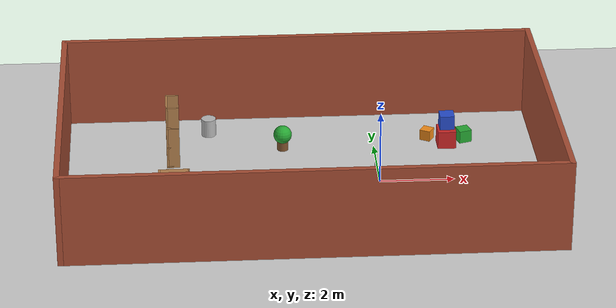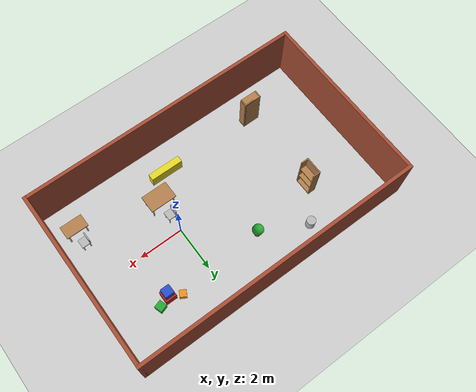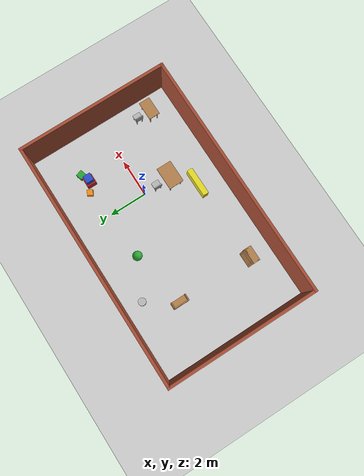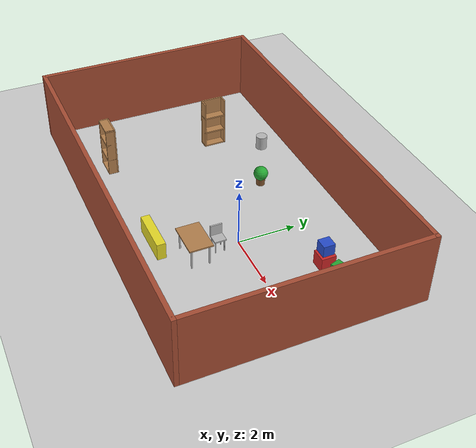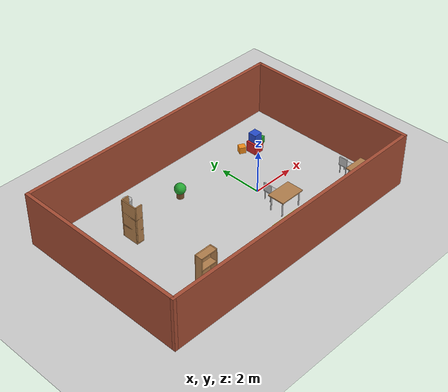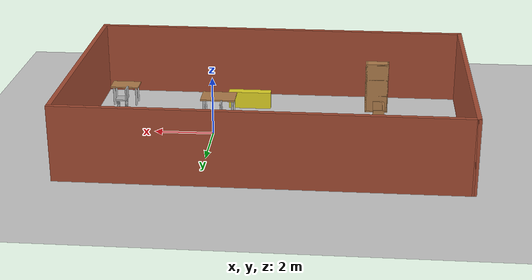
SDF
<?xml version='1.0'?>
<sdf version='1.7'>
  <world name='boxhouse_builtin'>
    <light name='sun' type='directional'>
      <cast_shadows>1</cast_shadows>
      <pose>0 0 10 0 -0 0</pose>
      <diffuse>0.8 0.8 0.8 1</diffuse>
      <specular>0.2 0.2 0.2 1</specular>
      <attenuation><range>1000</range><constant>0.9</constant><linear>0.01</linear><quadratic>0.001</quadratic></attenuation>
      <direction>-0.5 0.1 -0.9</direction>
    </light>

    <model name='ground_plane'>
      <static>1</static>
      <link name='link'>
        <collision name='collision'>
          <geometry><plane><normal>0 0 1</normal><size>100 100</size></plane></geometry>
          <surface><contact><collide_bitmask>65535</collide_bitmask><ode/></contact><friction><ode><mu>100</mu><mu2>50</mu2></ode></friction></surface>
          <max_contacts>10</max_contacts>
        </collision>
        <visual name='visual'>
          <cast_shadows>0</cast_shadows>
          <geometry><plane><normal>0 0 1</normal><size>100 100</size></plane></geometry>
          <material><script><uri>file://media/materials/scripts/gazebo.material</uri><name>Gazebo/Grey</name></script></material>
        </visual>
        <self_collide>0</self_collide>
      </link>
    </model>

    <!-- Room walls (13m x 8m) -->
    <model name='room_walls'>
      <pose>-1.97643 0.059964 0 0 -0 0</pose>
      <static>1</static>
      <link name='wall_front'>
        <collision name='collision'><geometry><box><size>13 0.15 2.5</size></box></geometry><pose>0 0 1.25 0 -0 0</pose></collision>
        <visual name='visual'>
          <pose>0 0 1.25 0 -0 0</pose>
          <geometry><box><size>13 0.15 2.5</size></box></geometry>
          <material><script><uri>file://media/materials/scripts/gazebo.material</uri><name>Gazebo/Bricks</name></script><ambient>0.6 0.55 0.5 1</ambient></material>
        </visual>
        <pose>0 3.925 0 0 -0 0</pose>
      </link>
      <link name='wall_right'>
        <collision name='collision'><geometry><box><size>8 0.15 2.5</size></box></geometry><pose>0 0 1.25 0 -0 0</pose></collision>
        <visual name='visual'>
          <pose>0 0 1.25 0 -0 0</pose>
          <geometry><box><size>8 0.15 2.5</size></box></geometry>
          <material><script><uri>file://media/materials/scripts/gazebo.material</uri><name>Gazebo/Bricks</name></script><ambient>0.6 0.55 0.5 1</ambient></material>
        </visual>
        <pose>6.425 0 0 0 -0 -1.5708</pose>
      </link>
      <link name='wall_back'>
        <collision name='collision'><geometry><box><size>13 0.15 2.5</size></box></geometry><pose>0 0 1.25 0 -0 0</pose></collision>
        <visual name='visual'>
          <pose>0 0 1.25 0 -0 0</pose>
          <geometry><box><size>13 0.15 2.5</size></box></geometry>
          <material><script><uri>file://media/materials/scripts/gazebo.material</uri><name>Gazebo/Bricks</name></script><ambient>0.6 0.55 0.5 1</ambient></material>
        </visual>
        <pose>0 -3.925 0 0 -0 3.14159</pose>
      </link>
      <link name='wall_left'>
        <collision name='collision'><geometry><box><size>8 0.15 2.5</size></box></geometry><pose>0 0 1.25 0 -0 0</pose></collision>
        <visual name='visual'>
          <pose>0 0 1.25 0 -0 0</pose>
          <geometry><box><size>8 0.15 2.5</size></box></geometry>
          <material><script><uri>file://media/materials/scripts/gazebo.material</uri><name>Gazebo/Bricks</name></script><ambient>0.6 0.55 0.5 1</ambient></material>
        </visual>
        <pose>-6.425 0 0 0 -0 1.5708</pose>
      </link>
    </model>

    <!-- ==== Built-in geometry furniture ==== -->

    <!-- Bookshelf 1: back left corner -->
    <model name='bookshelf_1'>
      <pose>-5.5 -2.5 0 0 -0 0</pose>
      <static>1</static>
      <link name='link'>
        <collision name='back'><geometry><box><size>0.8 0.05 1.8</size></box></geometry><pose>0 0.15 0.9 0 -0 0</pose></collision>
        <collision name='side_l'><geometry><box><size>0.05 0.35 1.8</size></box></geometry><pose>-0.375 0 0.9 0 -0 0</pose></collision>
        <collision name='side_r'><geometry><box><size>0.05 0.35 1.8</size></box></geometry><pose>0.375 0 0.9 0 -0 0</pose></collision>
        <collision name='bottom'><geometry><box><size>0.8 0.35 0.05</size></box></geometry><pose>0 0 0.025 0 -0 0</pose></collision>
        <collision name='shelf1'><geometry><box><size>0.8 0.35 0.05</size></box></geometry><pose>0 0 0.6 0 -0 0</pose></collision>
        <collision name='shelf2'><geometry><box><size>0.8 0.35 0.05</size></box></geometry><pose>0 0 1.2 0 -0 0</pose></collision>
        <collision name='top'><geometry><box><size>0.8 0.35 0.05</size></box></geometry><pose>0 0 1.775 0 -0 0</pose></collision>
        <visual name='back'><geometry><box><size>0.8 0.05 1.8</size></box></geometry><pose>0 0.15 0.9 0 -0 0</pose><material><script><uri>file://media/materials/scripts/gazebo.material</uri><name>Gazebo/Wood</name></script></material></visual>
        <visual name='side_l'><geometry><box><size>0.05 0.35 1.8</size></box></geometry><pose>-0.375 0 0.9 0 -0 0</pose><material><script><uri>file://media/materials/scripts/gazebo.material</uri><name>Gazebo/Wood</name></script></material></visual>
        <visual name='side_r'><geometry><box><size>0.05 0.35 1.8</size></box></geometry><pose>0.375 0 0.9 0 -0 0</pose><material><script><uri>file://media/materials/scripts/gazebo.material</uri><name>Gazebo/Wood</name></script></material></visual>
        <visual name='bottom'><geometry><box><size>0.8 0.35 0.05</size></box></geometry><pose>0 0 0.025 0 -0 0</pose><material><script><uri>file://media/materials/scripts/gazebo.material</uri><name>Gazebo/Wood</name></script></material></visual>
        <visual name='shelf1'><geometry><box><size>0.8 0.35 0.05</size></box></geometry><pose>0 0 0.6 0 -0 0</pose><material><script><uri>file://media/materials/scripts/gazebo.material</uri><name>Gazebo/Wood</name></script></material></visual>
        <visual name='shelf2'><geometry><box><size>0.8 0.35 0.05</size></box></geometry><pose>0 0 1.2 0 -0 0</pose><material><script><uri>file://media/materials/scripts/gazebo.material</uri><name>Gazebo/Wood</name></script></material></visual>
        <visual name='top'><geometry><box><size>0.8 0.35 0.05</size></box></geometry><pose>0 0 1.775 0 -0 0</pose><material><script><uri>file://media/materials/scripts/gazebo.material</uri><name>Gazebo/Wood</name></script></material></visual>
      </link>
    </model>

    <!-- Bookshelf 2: rotated against left wall -->
    <model name='bookshelf_2'>
      <pose>-5.5 1.5 0 0 -0 1.5708</pose>
      <static>1</static>
      <link name='link'>
        <collision name='back'><geometry><box><size>0.8 0.05 1.8</size></box></geometry><pose>0 0.15 0.9 0 -0 0</pose></collision>
        <collision name='side_l'><geometry><box><size>0.05 0.35 1.8</size></box></geometry><pose>-0.375 0 0.9 0 -0 0</pose></collision>
        <collision name='side_r'><geometry><box><size>0.05 0.35 1.8</size></box></geometry><pose>0.375 0 0.9 0 -0 0</pose></collision>
        <collision name='bottom'><geometry><box><size>0.8 0.35 0.05</size></box></geometry><pose>0 0 0.025 0 -0 0</pose></collision>
        <collision name='shelf1'><geometry><box><size>0.8 0.35 0.05</size></box></geometry><pose>0 0 0.6 0 -0 0</pose></collision>
        <collision name='shelf2'><geometry><box><size>0.8 0.35 0.05</size></box></geometry><pose>0 0 1.2 0 -0 0</pose></collision>
        <visual name='back'><geometry><box><size>0.8 0.05 1.8</size></box></geometry><pose>0 0.15 0.9 0 -0 0</pose><material><script><uri>file://media/materials/scripts/gazebo.material</uri><name>Gazebo/Wood</name></script></material></visual>
        <visual name='side_l'><geometry><box><size>0.05 0.35 1.8</size></box></geometry><pose>-0.375 0 0.9 0 -0 0</pose><material><script><uri>file://media/materials/scripts/gazebo.material</uri><name>Gazebo/Wood</name></script></material></visual>
        <visual name='side_r'><geometry><box><size>0.05 0.35 1.8</size></box></geometry><pose>0.375 0 0.9 0 -0 0</pose><material><script><uri>file://media/materials/scripts/gazebo.material</uri><name>Gazebo/Wood</name></script></material></visual>
        <visual name='bottom'><geometry><box><size>0.8 0.35 0.05</size></box></geometry><pose>0 0 0.025 0 -0 0</pose><material><script><uri>file://media/materials/scripts/gazebo.material</uri><name>Gazebo/Wood</name></script></material></visual>
        <visual name='shelf1'><geometry><box><size>0.8 0.35 0.05</size></box></geometry><pose>0 0 0.6 0 -0 0</pose><material><script><uri>file://media/materials/scripts/gazebo.material</uri><name>Gazebo/Wood</name></script></material></visual>
        <visual name='shelf2'><geometry><box><size>0.8 0.35 0.05</size></box></geometry><pose>0 0 1.2 0 -0 0</pose><material><script><uri>file://media/materials/scripts/gazebo.material</uri><name>Gazebo/Wood</name></script></material></visual>
      </link>
    </model>

    <!-- Table 1: center -->
    <model name='table_1'>
      <pose>0 -1.5 0 0 -0 0</pose>
      <static>1</static>
      <link name='link'>
        <collision name='top'><geometry><box><size>1.2 0.8 0.05</size></box></geometry><pose>0 0 0.75 0 -0 0</pose></collision>
        <collision name='leg1'><geometry><cylinder><radius>0.03</radius><length>0.75</length></cylinder></geometry><pose>-0.5 -0.3 0.375 0 -0 0</pose></collision>
        <collision name='leg2'><geometry><cylinder><radius>0.03</radius><length>0.75</length></cylinder></geometry><pose>0.5 -0.3 0.375 0 -0 0</pose></collision>
        <collision name='leg3'><geometry><cylinder><radius>0.03</radius><length>0.75</length></cylinder></geometry><pose>-0.5 0.3 0.375 0 -0 0</pose></collision>
        <collision name='leg4'><geometry><cylinder><radius>0.03</radius><length>0.75</length></cylinder></geometry><pose>0.5 0.3 0.375 0 -0 0</pose></collision>
        <visual name='top'><geometry><box><size>1.2 0.8 0.05</size></box></geometry><pose>0 0 0.75 0 -0 0</pose><material><script><uri>file://media/materials/scripts/gazebo.material</uri><name>Gazebo/Wood</name></script></material></visual>
        <visual name='leg1'><geometry><cylinder><radius>0.03</radius><length>0.75</length></cylinder></geometry><pose>-0.5 -0.3 0.375 0 -0 0</pose><material><script><uri>file://media/materials/scripts/gazebo.material</uri><name>Gazebo/Metal</name></script></material></visual>
        <visual name='leg2'><geometry><cylinder><radius>0.03</radius><length>0.75</length></cylinder></geometry><pose>0.5 -0.3 0.375 0 -0 0</pose><material><script><uri>file://media/materials/scripts/gazebo.material</uri><name>Gazebo/Metal</name></script></material></visual>
        <visual name='leg3'><geometry><cylinder><radius>0.03</radius><length>0.75</length></cylinder></geometry><pose>-0.5 0.3 0.375 0 -0 0</pose><material><script><uri>file://media/materials/scripts/gazebo.material</uri><name>Gazebo/Metal</name></script></material></visual>
        <visual name='leg4'><geometry><cylinder><radius>0.03</radius><length>0.75</length></cylinder></geometry><pose>0.5 0.3 0.375 0 -0 0</pose><material><script><uri>file://media/materials/scripts/gazebo.material</uri><name>Gazebo/Metal</name></script></material></visual>
      </link>
    </model>

    <!-- Table 2: right side -->
    <model name='table_2'>
      <pose>3.5 -2.5 0 0 -0 0</pose>
      <static>1</static>
      <link name='link'>
        <collision name='top'><geometry><box><size>1.0 0.6 0.05</size></box></geometry><pose>0 0 0.7 0 -0 0</pose></collision>
        <collision name='leg1'><geometry><cylinder><radius>0.03</radius><length>0.7</length></cylinder></geometry><pose>-0.4 -0.2 0.35 0 -0 0</pose></collision>
        <collision name='leg2'><geometry><cylinder><radius>0.03</radius><length>0.7</length></cylinder></geometry><pose>0.4 -0.2 0.35 0 -0 0</pose></collision>
        <collision name='leg3'><geometry><cylinder><radius>0.03</radius><length>0.7</length></cylinder></geometry><pose>-0.4 0.2 0.35 0 -0 0</pose></collision>
        <collision name='leg4'><geometry><cylinder><radius>0.03</radius><length>0.7</length></cylinder></geometry><pose>0.4 0.2 0.35 0 -0 0</pose></collision>
        <visual name='top'><geometry><box><size>1.0 0.6 0.05</size></box></geometry><pose>0 0 0.7 0 -0 0</pose><material><script><uri>file://media/materials/scripts/gazebo.material</uri><name>Gazebo/Wood</name></script></material></visual>
        <visual name='leg1'><geometry><cylinder><radius>0.03</radius><length>0.7</length></cylinder></geometry><pose>-0.4 -0.2 0.35 0 -0 0</pose><material><script><uri>file://media/materials/scripts/gazebo.material</uri><name>Gazebo/Metal</name></script></material></visual>
        <visual name='leg2'><geometry><cylinder><radius>0.03</radius><length>0.7</length></cylinder></geometry><pose>0.4 -0.2 0.35 0 -0 0</pose><material><script><uri>file://media/materials/scripts/gazebo.material</uri><name>Gazebo/Metal</name></script></material></visual>
        <visual name='leg3'><geometry><cylinder><radius>0.03</radius><length>0.7</length></cylinder></geometry><pose>-0.4 0.2 0.35 0 -0 0</pose><material><script><uri>file://media/materials/scripts/gazebo.material</uri><name>Gazebo/Metal</name></script></material></visual>
        <visual name='leg4'><geometry><cylinder><radius>0.03</radius><length>0.7</length></cylinder></geometry><pose>0.4 0.2 0.35 0 -0 0</pose><material><script><uri>file://media/materials/scripts/gazebo.material</uri><name>Gazebo/Metal</name></script></material></visual>
      </link>
    </model>

    <!-- Chair 1: near table 1 -->
    <model name='chair_1'>
      <pose>0 -0.7 0 0 -0 -1.5708</pose>
      <static>1</static>
      <link name='link'>
        <collision name='seat'><geometry><box><size>0.4 0.4 0.05</size></box></geometry><pose>0 0 0.45 0 -0 0</pose></collision>
        <collision name='back'><geometry><box><size>0.4 0.05 0.4</size></box></geometry><pose>0 -0.175 0.65 0 -0 0</pose></collision>
        <collision name='leg1'><geometry><cylinder><radius>0.02</radius><length>0.45</length></cylinder></geometry><pose>-0.15 -0.15 0.225 0 -0 0</pose></collision>
        <collision name='leg2'><geometry><cylinder><radius>0.02</radius><length>0.45</length></cylinder></geometry><pose>0.15 -0.15 0.225 0 -0 0</pose></collision>
        <collision name='leg3'><geometry><cylinder><radius>0.02</radius><length>0.45</length></cylinder></geometry><pose>-0.15 0.15 0.225 0 -0 0</pose></collision>
        <collision name='leg4'><geometry><cylinder><radius>0.02</radius><length>0.45</length></cylinder></geometry><pose>0.15 0.15 0.225 0 -0 0</pose></collision>
        <visual name='seat'><geometry><box><size>0.4 0.4 0.05</size></box></geometry><pose>0 0 0.45 0 -0 0</pose><material><script><uri>file://media/materials/scripts/gazebo.material</uri><name>Gazebo/Plastic</name></script></material></visual>
        <visual name='back'><geometry><box><size>0.4 0.05 0.4</size></box></geometry><pose>0 -0.175 0.65 0 -0 0</pose><material><script><uri>file://media/materials/scripts/gazebo.material</uri><name>Gazebo/Plastic</name></script></material></visual>
        <visual name='leg1'><geometry><cylinder><radius>0.02</radius><length>0.45</length></cylinder></geometry><pose>-0.15 -0.15 0.225 0 -0 0</pose><material><script><uri>file://media/materials/scripts/gazebo.material</uri><name>Gazebo/Metal</name></script></material></visual>
        <visual name='leg2'><geometry><cylinder><radius>0.02</radius><length>0.45</length></cylinder></geometry><pose>0.15 -0.15 0.225 0 -0 0</pose><material><script><uri>file://media/materials/scripts/gazebo.material</uri><name>Gazebo/Metal</name></script></material></visual>
        <visual name='leg3'><geometry><cylinder><radius>0.02</radius><length>0.45</length></cylinder></geometry><pose>-0.15 0.15 0.225 0 -0 0</pose><material><script><uri>file://media/materials/scripts/gazebo.material</uri><name>Gazebo/Metal</name></script></material></visual>
        <visual name='leg4'><geometry><cylinder><radius>0.02</radius><length>0.45</length></cylinder></geometry><pose>0.15 0.15 0.225 0 -0 0</pose><material><script><uri>file://media/materials/scripts/gazebo.material</uri><name>Gazebo/Metal</name></script></material></visual>
      </link>
    </model>

    <!-- Chair 2: near table 2 -->
    <model name='chair_2'>
      <pose>3.5 -1.8 0 0 -0 -1.5708</pose>
      <static>1</static>
      <link name='link'>
        <collision name='seat'><geometry><box><size>0.4 0.4 0.05</size></box></geometry><pose>0 0 0.45 0 -0 0</pose></collision>
        <collision name='back'><geometry><box><size>0.4 0.05 0.4</size></box></geometry><pose>0 -0.175 0.65 0 -0 0</pose></collision>
        <collision name='leg1'><geometry><cylinder><radius>0.02</radius><length>0.45</length></cylinder></geometry><pose>-0.15 -0.15 0.225 0 -0 0</pose></collision>
        <collision name='leg2'><geometry><cylinder><radius>0.02</radius><length>0.45</length></cylinder></geometry><pose>0.15 -0.15 0.225 0 -0 0</pose></collision>
        <collision name='leg3'><geometry><cylinder><radius>0.02</radius><length>0.45</length></cylinder></geometry><pose>-0.15 0.15 0.225 0 -0 0</pose></collision>
        <collision name='leg4'><geometry><cylinder><radius>0.02</radius><length>0.45</length></cylinder></geometry><pose>0.15 0.15 0.225 0 -0 0</pose></collision>
        <visual name='seat'><geometry><box><size>0.4 0.4 0.05</size></box></geometry><pose>0 0 0.45 0 -0 0</pose><material><script><uri>file://media/materials/scripts/gazebo.material</uri><name>Gazebo/Plastic</name></script></material></visual>
        <visual name='back'><geometry><box><size>0.4 0.05 0.4</size></box></geometry><pose>0 -0.175 0.65 0 -0 0</pose><material><script><uri>file://media/materials/scripts/gazebo.material</uri><name>Gazebo/Plastic</name></script></material></visual>
        <visual name='leg1'><geometry><cylinder><radius>0.02</radius><length>0.45</length></cylinder></geometry><pose>-0.15 -0.15 0.225 0 -0 0</pose><material><script><uri>file://media/materials/scripts/gazebo.material</uri><name>Gazebo/Metal</name></script></material></visual>
        <visual name='leg2'><geometry><cylinder><radius>0.02</radius><length>0.45</length></cylinder></geometry><pose>0.15 -0.15 0.225 0 -0 0</pose><material><script><uri>file://media/materials/scripts/gazebo.material</uri><name>Gazebo/Metal</name></script></material></visual>
        <visual name='leg3'><geometry><cylinder><radius>0.02</radius><length>0.45</length></cylinder></geometry><pose>-0.15 0.15 0.225 0 -0 0</pose><material><script><uri>file://media/materials/scripts/gazebo.material</uri><name>Gazebo/Metal</name></script></material></visual>
        <visual name='leg4'><geometry><cylinder><radius>0.02</radius><length>0.45</length></cylinder></geometry><pose>0.15 0.15 0.225 0 -0 0</pose><material><script><uri>file://media/materials/scripts/gazebo.material</uri><name>Gazebo/Metal</name></script></material></visual>
      </link>
    </model>

    <!-- Trash can: front left -->
    <model name='trash_can'>
      <pose>-4.5 3.0 0 0 -0 0</pose>
      <static>1</static>
      <link name='link'>
        <collision name='body'><geometry><cylinder><radius>0.2</radius><length>0.5</length></cylinder></geometry><pose>0 0 0.25 0 -0 0</pose></collision>
        <visual name='body'><geometry><cylinder><radius>0.2</radius><length>0.5</length></cylinder></geometry><pose>0 0 0.25 0 -0 0</pose><material><script><uri>file://media/materials/scripts/gazebo.material</uri><name>Gazebo/Metal</name></script></material></visual>
      </link>
    </model>

    <!-- Jersey barrier partition -->
    <model name='barrier_1'>
      <pose>-1.0 -2.5 0 0 -0 0</pose>
      <static>1</static>
      <link name='link'>
        <collision name='body'><geometry><box><size>1.5 0.3 0.6</size></box></geometry><pose>0 0 0.3 0 -0 0</pose></collision>
        <visual name='body'><geometry><box><size>1.5 0.3 0.6</size></box></geometry><pose>0 0 0.3 0 -0 0</pose><material><script><uri>file://media/materials/scripts/gazebo.material</uri><name>Gazebo/Yellow</name></script></material></visual>
      </link>
    </model>

    <!-- Decorative box stack (colorful) -->
    <model name='box_red'>
      <pose>2.0 2.0 0.25 0 -0 0</pose>
      <static>1</static>
      <link name='link'>
        <collision name='body'><geometry><box><size>0.5 0.5 0.5</size></box></geometry></collision>
        <visual name='body'><geometry><box><size>0.5 0.5 0.5</size></box></geometry><material><script><uri>file://media/materials/scripts/gazebo.material</uri><name>Gazebo/Red</name></script></material></visual>
      </link>
    </model>

    <model name='box_blue'>
      <pose>2.0 2.0 0.75 0 -0 0</pose>
      <static>1</static>
      <link name='link'>
        <collision name='body'><geometry><box><size>0.4 0.4 0.4</size></box></geometry></collision>
        <visual name='body'><geometry><box><size>0.4 0.4 0.4</size></box></geometry><material><script><uri>file://media/materials/scripts/gazebo.material</uri><name>Gazebo/Blue</name></script></material></visual>
      </link>
    </model>

    <model name='box_green'>
      <pose>2.5 2.2 0.2 0 -0 0.3</pose>
      <static>1</static>
      <link name='link'>
        <collision name='body'><geometry><box><size>0.35 0.35 0.35</size></box></geometry></collision>
        <visual name='body'><geometry><box><size>0.35 0.35 0.35</size></box></geometry><material><script><uri>file://media/materials/scripts/gazebo.material</uri><name>Gazebo/Green</name></script></material></visual>
      </link>
    </model>

    <model name='box_orange'>
      <pose>1.5 2.3 0.2 0 -0 -0.5</pose>
      <static>1</static>
      <link name='link'>
        <collision name='body'><geometry><box><size>0.3 0.3 0.3</size></box></geometry></collision>
        <visual name='body'><geometry><box><size>0.3 0.3 0.3</size></box></geometry><material><script><uri>file://media/materials/scripts/gazebo.material</uri><name>Gazebo/Orange</name></script></material></visual>
      </link>
    </model>

    <!-- Potted plant: sphere on cylinder -->
    <model name='plant_1'>
      <pose>-2.5 2.0 0 0 -0 0</pose>
      <static>1</static>
      <link name='link'>
        <collision name='pot'><geometry><cylinder><radius>0.15</radius><length>0.3</length></cylinder></geometry><pose>0 0 0.15 0 -0 0</pose></collision>
        <collision name='bush'><geometry><sphere><radius>0.25</radius></sphere></geometry><pose>0 0 0.45 0 -0 0</pose></collision>
        <visual name='pot'><geometry><cylinder><radius>0.15</radius><length>0.3</length></cylinder></geometry><pose>0 0 0.15 0 -0 0</pose><material><script><uri>file://media/materials/scripts/gazebo.material</uri><name>Gazebo/Brown</name></script></material></visual>
        <visual name='bush'><geometry><sphere><radius>0.25</radius></sphere></geometry><pose>0 0 0.45 0 -0 0</pose><material><script><uri>file://media/materials/scripts/gazebo.material</uri><name>Gazebo/Green</name></script></material></visual>
      </link>
    </model>

    <physics type='ode'>
      <max_step_size>0.001</max_step_size>
      <real_time_factor>1</real_time_factor>
      <real_time_update_rate>1000</real_time_update_rate>
    </physics>

    <scene>
      <ambient>0.4 0.4 0.4 1</ambient>
      <background>0.7 0.7 0.7 1</background>
      <shadows>1</shadows>
    </scene>
  </world>
</sdf>
